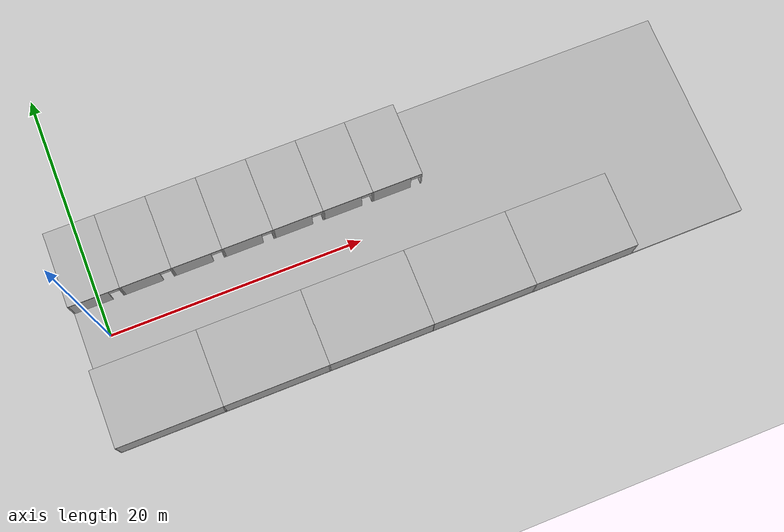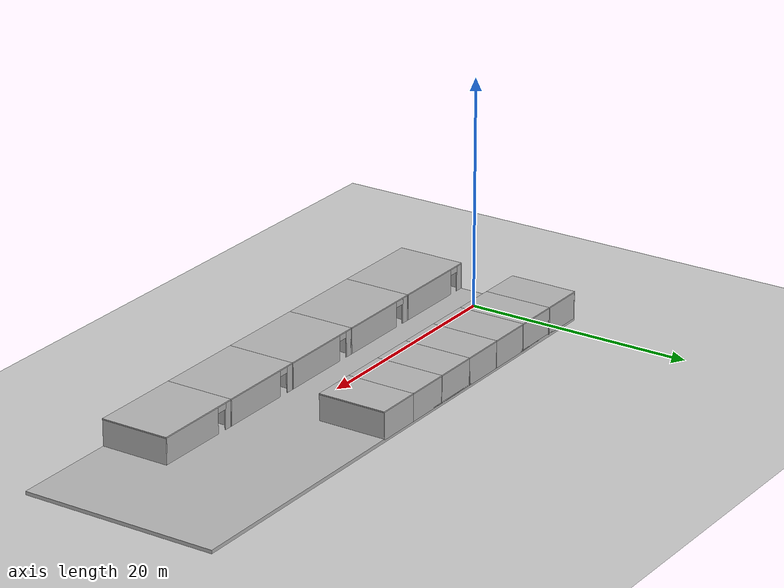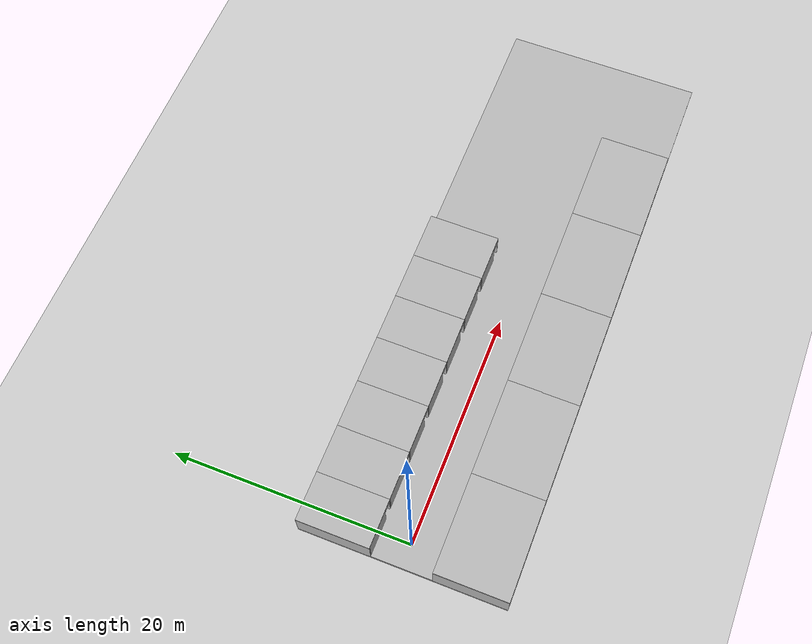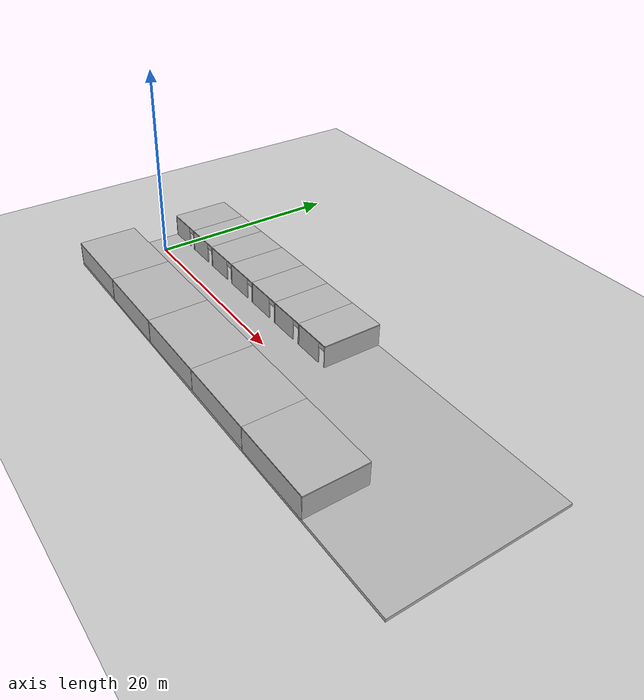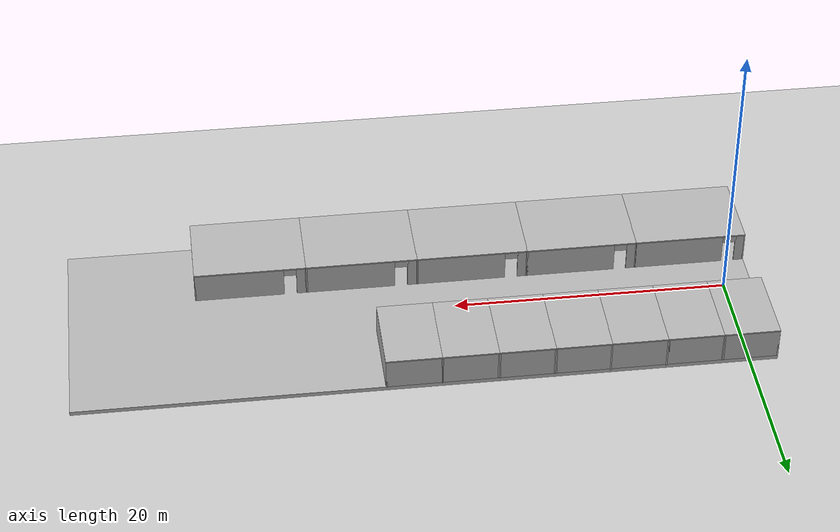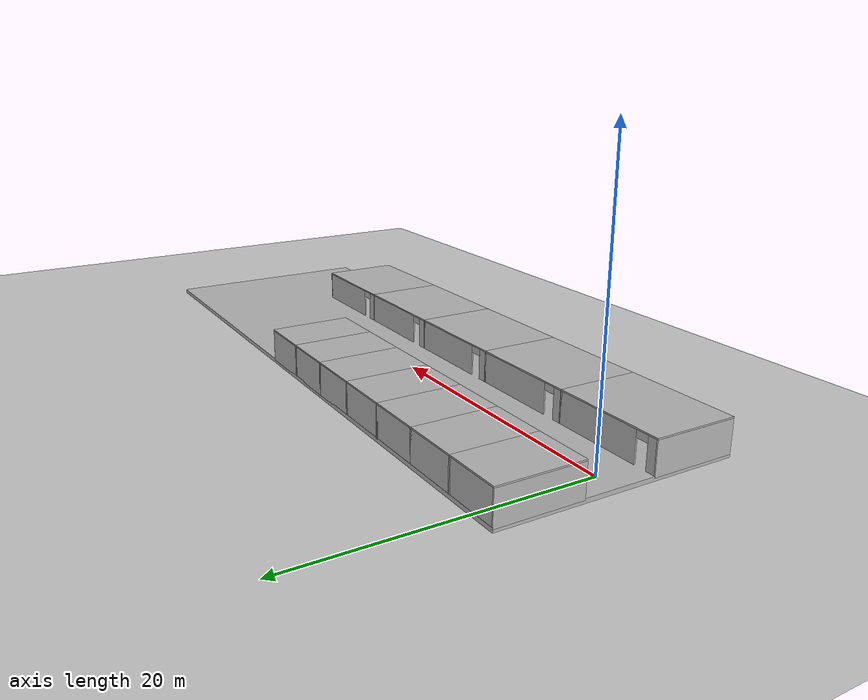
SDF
<?xml version="1.0" ?>
<sdf version="1.5">
  <world name="default">

    <include>
      <uri>model://sun</uri>
    </include>

    <include>
      <uri>model://ground_plane</uri>
    </include>

    turtlebot
(
  pose [ 2.0 2.0 0.0 0.0 ]
  name "turtlebot"
  color "black"
)

    <!--room901==========================================================-->
    <model name="room901">
      <pose>0 5.5 0.15 0 0 0</pose>
      <static> true </static>
      <link name="room901_wall">

        <!--room_floor-->

        <!--room_left_wall-->
        <collision name="left_wall_collision">
          <pose>-1.956 0 1.2 0 0 0</pose>
          <geometry>
            <box>
              <size>0.1 6.0 2.3</size>
            </box>
          </geometry>
        </collision>
        <visual name="left_wall_visual">
          <pose>-1.956 0 1.2 0 0 0</pose>
          <geometry>
            <box>
              <size>0.1 6.0 2.3</size>
            </box>
          </geometry>
        </visual>

        <!--room_right_wall-->
        <collision name="right_wall_collision">
          <pose>1.956 0 1.2 0 0 0</pose>
          <geometry>
            <box>
              <size>0.1 6.0 2.3</size>
            </box>
          </geometry>
        </collision>
        <visual name="right_wall_visual">
          <pose>1.956 0 1.2 0 0 0</pose>
          <geometry>
            <box>
              <size>0.1 6.0 2.3</size>
            </box>
          </geometry>
        </visual>

        <!--rear_wall-->
        <collision name="rear_wall_collision">
          <pose>0 2.95 1.2 0 0 0</pose>
          <geometry>
            <box>
              <size>4.0 0.1 2.3</size>
            </box>
          </geometry>
        </collision>
        <visual name="rear_wall_visual">
          <pose>0 2.95 1.2 0 0 0</pose>
          <geometry>
            <box>
              <size>4.0 0.1 2.3</size>
            </box>
          </geometry>
        </visual>

      <!--front_wall-->
        <collision name="front_left_wall_collision">
          <pose>-0.41 -2.95 1.2 0 0 0</pose>
          <geometry>
            <box>
              <size>3.0 0.1 2.3</size>
            </box>
          </geometry>
        </collision>
        <visual name="front_left_wall_visual">
          <pose>-0.41 -2.95 1.2 0 0 0</pose>
          <geometry>
            <box>
              <size>3.0 0.1 2.3</size>
            </box>
          </geometry>
        </visual>

        <collision name="front_right_wall_collision">
          <pose>0.85 -0.95 1.2 0 0 0</pose>
          <geometry>
            <box>
              <size>0.4 0.1 2.3</size>
            </box>
          </geometry>
        </collision>
        <visual name="front_right_wall_visual">
          <pose>0.85 -0.95 1.2 0 0 0</pose>
          <geometry>
            <box>
              <size>0.4 0.1 2.3</size>
            </box>
          </geometry>
        </visual>

        <collision name="front_top_wall_collision">
          <pose>1.5 -2.95 2.1 0 0 0</pose>
          <geometry>
            <box>
              <size>0.82 0.1 0.5</size>
            </box>
          </geometry>
        </collision>
        <visual name="front_top_wall_visual">
          <pose>1.5 -2.95 2.1 0 0 0</pose>
          <geometry>
            <box>
              <size>0.82 0.1 0.5</size>
            </box>
          </geometry>
        </visual>

      <!--room_ceiling-->
        <collision name="ceiling_collision">
          <pose>0 0 2.4 0 0 0</pose>
          <geometry>
            <box>
              <size>4.02 6.0 0.1</size>
            </box>
          </geometry>
        </collision>
        <visual name="ceiling_visual">
          <pose>0 0 2.4 0 0 0</pose>
          <geometry>
            <box>
              <size>4.02 6.0 0.1</size>
            </box>
          </geometry>
        </visual>
      </link>
    </model>

    <!--room902=======================================================-->
    <model name="room902">
      <pose>4 5.5 0.15 0 0 0</pose>
      <static> true </static>
      <link name="room902_wall">

        <!--room_floor-->

        <!--room_left_wall-->
        <collision name="left_wall_collision">
          <pose>-1.956 0 1.2 0 0 0</pose>
          <geometry>
            <box>
              <size>0.1 6.0 2.3</size>
            </box>
          </geometry>
        </collision>
        <visual name="left_wall_visual">
          <pose>-1.956 0 1.2 0 0 0</pose>
          <geometry>
            <box>
              <size>0.1 6.0 2.3</size>
            </box>
          </geometry>
        </visual>

        <!--room_right_wall-->
        <collision name="right_wall_collision">
          <pose>1.956 0 1.2 0 0 0</pose>
          <geometry>
            <box>
              <size>0.1 6.0 2.3</size>
            </box>
          </geometry>
        </collision>
        <visual name="right_wall_visual">
          <pose>1.956 0 1.2 0 0 0</pose>
          <geometry>
            <box>
              <size>0.1 6.0 2.3</size>
            </box>
          </geometry>
        </visual>

        <!--rear_wall-->
        <collision name="rear_wall_collision">
          <pose>0 2.95 1.2 0 0 0</pose>
          <geometry>
            <box>
              <size>4.0 0.1 2.3</size>
            </box>
          </geometry>
        </collision>
        <visual name="rear_wall_visual">
          <pose>0 2.95 1.2 0 0 0</pose>
          <geometry>
            <box>
              <size>4.0 0.1 2.3</size>
            </box>
          </geometry>
        </visual>

      <!--front_wall-->
        <collision name="front_left_wall_collision">
          <pose>-0.41 -2.95 1.2 0 0 0</pose>
          <geometry>
            <box>
              <size>3.0 0.1 2.3</size>
            </box>
          </geometry>
        </collision>
        <visual name="front_left_wall_visual">
          <pose>-0.41 -2.95 1.2 0 0 0</pose>
          <geometry>
            <box>
              <size>3.0 0.1 2.3</size>
            </box>
          </geometry>
        </visual>

        <collision name="front_top_wall_collision">
          <pose>1.5 -2.95 2.1 0 0 0</pose>
          <geometry>
            <box>
              <size>0.82 0.1 0.5</size>
            </box>
          </geometry>
        </collision>
        <visual name="front_top_wall_visual">
          <pose>1.5 -2.95 2.1 0 0 0</pose>
          <geometry>
            <box>
              <size>0.82 0.1 0.5</size>
            </box>
          </geometry>
        </visual>

      <!--room_ceiling-->
        <collision name="ceiling_collision">
          <pose>0 0 2.4 0 0 0</pose>
          <geometry>
            <box>
              <size>4.02 6.0 0.1</size>
            </box>
          </geometry>
        </collision>
        <visual name="ceiling_visual">
          <pose>0 0 2.4 0 0 0</pose>
          <geometry>
            <box>
              <size>4.02 6.0 0.1</size>
            </box>
          </geometry>
        </visual>
      </link>
    </model>

    <!--room903==========================================================-->
    <model name="room903">
      <pose>8 5.5 0.15 0 0 0</pose>
      <static> true </static>
      <link name="room903_wall">

        <!--room_floor-->

        <!--room_left_wall-->
        <collision name="left_wall_collision">
          <pose>-1.956 0 1.2 0 0 0</pose>
          <geometry>
            <box>
              <size>0.1 6.0 2.3</size>
            </box>
          </geometry>
        </collision>
        <visual name="left_wall_visual">
          <pose>-1.956 0 1.2 0 0 0</pose>
          <geometry>
            <box>
              <size>0.1 6.0 2.3</size>
            </box>
          </geometry>
        </visual>

        <!--room_right_wall-->
        <collision name="right_wall_collision">
          <pose>1.956 0 1.2 0 0 0</pose>
          <geometry>
            <box>
              <size>0.1 6.0 2.3</size>
            </box>
          </geometry>
        </collision>
        <visual name="right_wall_visual">
          <pose>1.956 0 1.2 0 0 0</pose>
          <geometry>
            <box>
              <size>0.1 6.0 2.3</size>
            </box>
          </geometry>
        </visual>

        <!--rear_wall-->
        <collision name="rear_wall_collision">
          <pose>0 2.95 1.2 0 0 0</pose>
          <geometry>
            <box>
              <size>4.0 0.1 2.3</size>
            </box>
          </geometry>
        </collision>
        <visual name="rear_wall_visual">
          <pose>0 2.95 1.2 0 0 0</pose>
          <geometry>
            <box>
              <size>4.0 0.1 2.3</size>
            </box>
          </geometry>
        </visual>

      <!--front_wall-->
        <collision name="front_left_wall_collision">
          <pose>-0.41 -2.95 1.2 0 0 0</pose>
          <geometry>
            <box>
              <size>3.0 0.1 2.3</size>
            </box>
          </geometry>
        </collision>
        <visual name="front_left_wall_visual">
          <pose>-0.41 -2.95 1.2 0 0 0</pose>
          <geometry>
            <box>
              <size>3.0 0.1 2.3</size>
            </box>
          </geometry>
        </visual>

        <collision name="front_right_wall_collision">
          <pose>0.85 -0.95 1.2 0 0 0</pose>
          <geometry>
            <box>
              <size>0.4 0.1 2.3</size>
            </box>
          </geometry>
        </collision>
        <visual name="front_right_wall_visual">
          <pose>0.85 -0.95 1.2 0 0 0</pose>
          <geometry>
            <box>
              <size>0.4 0.1 2.3</size>
            </box>
          </geometry>
        </visual>

        <collision name="front_top_wall_collision">
          <pose>1.5 -2.95 2.1 0 0 0</pose>
          <geometry>
            <box>
              <size>0.82 0.1 0.5</size>
            </box>
          </geometry>
        </collision>
        <visual name="front_top_wall_visual">
          <pose>1.5 -2.95 2.1 0 0 0</pose>
          <geometry>
            <box>
              <size>0.82 0.1 0.5</size>
            </box>
          </geometry>
        </visual>

      <!--room_ceiling-->
        <collision name="ceiling_collision">
          <pose>0 0 2.4 0 0 0</pose>
          <geometry>
            <box>
              <size>4.02 6.0 0.1</size>
            </box>
          </geometry>
        </collision>
        <visual name="ceiling_visual">
          <pose>0 0 2.4 0 0 0</pose>
          <geometry>
            <box>
              <size>4.02 6.0 0.1</size>
            </box>
          </geometry>
        </visual>
      </link>
    </model>

    <!--room904==========================================================-->
    <model name="room904">
      <pose>12 5.5 0.15 0 0 0</pose>
      <static> true </static>
      <link name="room904_wall">

        <!--room_floor-->

        <!--room_left_wall-->
        <collision name="left_wall_collision">
          <pose>-1.956 0 1.2 0 0 0</pose>
          <geometry>
            <box>
              <size>0.1 6.0 2.3</size>
            </box>
          </geometry>
        </collision>
        <visual name="left_wall_visual">
          <pose>-1.956 0 1.2 0 0 0</pose>
          <geometry>
            <box>
              <size>0.1 6.0 2.3</size>
            </box>
          </geometry>
        </visual>

        <!--room_right_wall-->
        <collision name="right_wall_collision">
          <pose>1.956 0 1.2 0 0 0</pose>
          <geometry>
            <box>
              <size>0.1 6.0 2.3</size>
            </box>
          </geometry>
        </collision>
        <visual name="right_wall_visual">
          <pose>1.956 0 1.2 0 0 0</pose>
          <geometry>
            <box>
              <size>0.1 6.0 2.3</size>
            </box>
          </geometry>
        </visual>

        <!--rear_wall-->
        <collision name="rear_wall_collision">
          <pose>0 2.95 1.2 0 0 0</pose>
          <geometry>
            <box>
              <size>4.0 0.1 2.3</size>
            </box>
          </geometry>
        </collision>
        <visual name="rear_wall_visual">
          <pose>0 2.95 1.2 0 0 0</pose>
          <geometry>
            <box>
              <size>4.0 0.1 2.3</size>
            </box>
          </geometry>
        </visual>

      <!--front_wall-->
        <collision name="front_left_wall_collision">
          <pose>-0.41 -2.95 1.2 0 0 0</pose>
          <geometry>
            <box>
              <size>3.0 0.1 2.3</size>
            </box>
          </geometry>
        </collision>
        <visual name="front_left_wall_visual">
          <pose>-0.41 -2.95 1.2 0 0 0</pose>
          <geometry>
            <box>
              <size>3.0 0.1 2.3</size>
            </box>
          </geometry>
        </visual>

        <collision name="front_right_wall_collision">
          <pose>0.85 -0.95 1.2 0 0 0</pose>
          <geometry>
            <box>
              <size>0.4 0.1 2.3</size>
            </box>
          </geometry>
        </collision>
        <visual name="front_right_wall_visual">
          <pose>0.85 -0.95 1.2 0 0 0</pose>
          <geometry>
            <box>
              <size>0.4 0.1 2.3</size>
            </box>
          </geometry>
        </visual>

        <collision name="front_top_wall_collision">
          <pose>1.5 -2.95 2.1 0 0 0</pose>
          <geometry>
            <box>
              <size>0.82 0.1 0.5</size>
            </box>
          </geometry>
        </collision>
        <visual name="front_top_wall_visual">
          <pose>1.5 -2.95 2.1 0 0 0</pose>
          <geometry>
            <box>
              <size>0.82 0.1 0.5</size>
            </box>
          </geometry>
        </visual>

      <!--room_ceiling-->
        <collision name="ceiling_collision">
          <pose>0 0 2.4 0 0 0</pose>
          <geometry>
            <box>
              <size>4.02 6.0 0.1</size>
            </box>
          </geometry>
        </collision>
        <visual name="ceiling_visual">
          <pose>0 0 2.4 0 0 0</pose>
          <geometry>
            <box>
              <size>4.02 6.0 0.1</size>
            </box>
          </geometry>
        </visual>
      </link>
    </model>

    <!--room905==========================================================-->
    <model name="room905">
      <pose>16 5.5 0.15 0 0 0</pose>
      <static> true </static>
      <link name="room905_wall">

        <!--room_floor-->

        <!--room_left_wall-->
        <collision name="left_wall_collision">
          <pose>-1.956 0 1.2 0 0 0</pose>
          <geometry>
            <box>
              <size>0.1 6.0 2.3</size>
            </box>
          </geometry>
        </collision>
        <visual name="left_wall_visual">
          <pose>-1.956 0 1.2 0 0 0</pose>
          <geometry>
            <box>
              <size>0.1 6.0 2.3</size>
            </box>
          </geometry>
        </visual>

        <!--room_right_wall-->
        <collision name="right_wall_collision">
          <pose>1.956 0 1.2 0 0 0</pose>
          <geometry>
            <box>
              <size>0.1 6.0 2.3</size>
            </box>
          </geometry>
        </collision>
        <visual name="right_wall_visual">
          <pose>1.956 0 1.2 0 0 0</pose>
          <geometry>
            <box>
              <size>0.1 6.0 2.3</size>
            </box>
          </geometry>
        </visual>

        <!--rear_wall-->
        <collision name="rear_wall_collision">
          <pose>0 2.95 1.2 0 0 0</pose>
          <geometry>
            <box>
              <size>4.0 0.1 2.3</size>
            </box>
          </geometry>
        </collision>
        <visual name="rear_wall_visual">
          <pose>0 2.95 1.2 0 0 0</pose>
          <geometry>
            <box>
              <size>4.0 0.1 2.3</size>
            </box>
          </geometry>
        </visual>

      <!--front_wall-->
        <collision name="front_left_wall_collision">
          <pose>-0.41 -2.95 1.2 0 0 0</pose>
          <geometry>
            <box>
              <size>3.0 0.1 2.3</size>
            </box>
          </geometry>
        </collision>
        <visual name="front_left_wall_visual">
          <pose>-0.41 -2.95 1.2 0 0 0</pose>
          <geometry>
            <box>
              <size>3.0 0.1 2.3</size>
            </box>
          </geometry>
        </visual>

        <collision name="front_right_wall_collision">
          <pose>0.85 -0.95 1.2 0 0 0</pose>
          <geometry>
            <box>
              <size>0.4 0.1 2.3</size>
            </box>
          </geometry>
        </collision>
        <visual name="front_right_wall_visual">
          <pose>0.85 -0.95 1.2 0 0 0</pose>
          <geometry>
            <box>
              <size>0.4 0.1 2.3</size>
            </box>
          </geometry>
        </visual>

        <collision name="front_top_wall_collision">
          <pose>1.5 -2.95 2.1 0 0 0</pose>
          <geometry>
            <box>
              <size>0.82 0.1 0.5</size>
            </box>
          </geometry>
        </collision>
        <visual name="front_top_wall_visual">
          <pose>1.5 -2.95 2.1 0 0 0</pose>
          <geometry>
            <box>
              <size>0.82 0.1 0.5</size>
            </box>
          </geometry>
        </visual>

      <!--room_ceiling-->
        <collision name="ceiling_collision">
          <pose>0 0 2.4 0 0 0</pose>
          <geometry>
            <box>
              <size>4.02 6.0 0.1</size>
            </box>
          </geometry>
        </collision>
        <visual name="ceiling_visual">
          <pose>0 0 2.4 0 0 0</pose>
          <geometry>
            <box>
              <size>4.02 6.0 0.1</size>
            </box>
          </geometry>
        </visual>
      </link>
    </model>

    <!--room906==========================================================-->
    <model name="room906">
      <pose>20 5.5 0.15 0 0 0</pose>
      <static> true </static>
      <link name="room906_wall">

        <!--room_floor-->

        <!--room_left_wall-->
        <collision name="left_wall_collision">
          <pose>-1.956 0 1.2 0 0 0</pose>
          <geometry>
            <box>
              <size>0.1 6.0 2.3</size>
            </box>
          </geometry>
        </collision>
        <visual name="left_wall_visual">
          <pose>-1.956 0 1.2 0 0 0</pose>
          <geometry>
            <box>
              <size>0.1 6.0 2.3</size>
            </box>
          </geometry>
        </visual>

        <!--room_right_wall-->
        <collision name="right_wall_collision">
          <pose>1.956 0 1.2 0 0 0</pose>
          <geometry>
            <box>
              <size>0.1 6.0 2.3</size>
            </box>
          </geometry>
        </collision>
        <visual name="right_wall_visual">
          <pose>1.956 0 1.2 0 0 0</pose>
          <geometry>
            <box>
              <size>0.1 6.0 2.3</size>
            </box>
          </geometry>
        </visual>

        <!--rear_wall-->
        <collision name="rear_wall_collision">
          <pose>0 2.95 1.2 0 0 0</pose>
          <geometry>
            <box>
              <size>4.0 0.1 2.3</size>
            </box>
          </geometry>
        </collision>
        <visual name="rear_wall_visual">
          <pose>0 2.95 1.2 0 0 0</pose>
          <geometry>
            <box>
              <size>4.0 0.1 2.3</size>
            </box>
          </geometry>
        </visual>

      <!--front_wall-->
        <collision name="front_left_wall_collision">
          <pose>-0.41 -2.95 1.2 0 0 0</pose>
          <geometry>
            <box>
              <size>3.0 0.1 2.3</size>
            </box>
          </geometry>
        </collision>
        <visual name="front_left_wall_visual">
          <pose>-0.41 -2.95 1.2 0 0 0</pose>
          <geometry>
            <box>
              <size>3.0 0.1 2.3</size>
            </box>
          </geometry>
        </visual>

        <collision name="front_right_wall_collision">
          <pose>0.85 -0.95 1.2 0 0 0</pose>
          <geometry>
            <box>
              <size>0.4 0.1 2.3</size>
            </box>
          </geometry>
        </collision>
        <visual name="front_right_wall_visual">
          <pose>0.85 -0.95 1.2 0 0 0</pose>
          <geometry>
            <box>
              <size>0.4 0.1 2.3</size>
            </box>
          </geometry>
        </visual>

        <collision name="front_top_wall_collision">
          <pose>1.5 -2.95 2.1 0 0 0</pose>
          <geometry>
            <box>
              <size>0.82 0.1 0.5</size>
            </box>
          </geometry>
        </collision>
        <visual name="front_top_wall_visual">
          <pose>1.5 -2.95 2.1 0 0 0</pose>
          <geometry>
            <box>
              <size>0.82 0.1 0.5</size>
            </box>
          </geometry>
        </visual>

      <!--room_ceiling-->
        <collision name="ceiling_collision">
          <pose>0 0 2.4 0 0 0</pose>
          <geometry>
            <box>
              <size>4.02 6.0 0.1</size>
            </box>
          </geometry>
        </collision>
        <visual name="ceiling_visual">
          <pose>0 0 2.4 0 0 0</pose>
          <geometry>
            <box>
              <size>4.02 6.0 0.1</size>
            </box>
          </geometry>
        </visual>
      </link>
    </model>

    <!--room907==========================================================-->
    <model name="room907">
      <pose>24 5.5 0.15 0 0 0</pose>
      <static> true </static>
      <link name="room907_wall">

        <!--room_floor-->

        <!--room_left_wall-->
        <collision name="left_wall_collision">
          <pose>-1.956 0 1.2 0 0 0</pose>
          <geometry>
            <box>
              <size>0.1 6.0 2.3</size>
            </box>
          </geometry>
        </collision>
        <visual name="left_wall_visual">
          <pose>-1.956 0 1.2 0 0 0</pose>
          <geometry>
            <box>
              <size>0.1 6.0 2.3</size>
            </box>
          </geometry>
        </visual>

        <!--room_right_wall-->
        <collision name="right_wall_collision">
          <pose>1.956 0 1.2 0 0 0</pose>
          <geometry>
            <box>
              <size>0.1 6.0 2.3</size>
            </box>
          </geometry>
        </collision>
        <visual name="right_wall_visual">
          <pose>1.956 0 1.2 0 0 0</pose>
          <geometry>
            <box>
              <size>0.1 6.0 2.3</size>
            </box>
          </geometry>
        </visual>

        <!--rear_wall-->
        <collision name="rear_wall_collision">
          <pose>0 2.95 1.2 0 0 0</pose>
          <geometry>
            <box>
              <size>4.0 0.1 2.3</size>
            </box>
          </geometry>
        </collision>
        <visual name="rear_wall_visual">
          <pose>0 2.95 1.2 0 0 0</pose>
          <geometry>
            <box>
              <size>4.0 0.1 2.3</size>
            </box>
          </geometry>
        </visual>

      <!--front_wall-->
        <collision name="front_left_wall_collision">
          <pose>-0.41 -2.95 1.2 0 0 0</pose>
          <geometry>
            <box>
              <size>3.0 0.1 2.3</size>
            </box>
          </geometry>
        </collision>
        <visual name="front_left_wall_visual">
          <pose>-0.41 -2.95 1.2 0 0 0</pose>
          <geometry>
            <box>
              <size>3.0 0.1 2.3</size>
            </box>
          </geometry>
        </visual>

        <collision name="front_right_wall_collision">
          <pose>0.85 -0.95 1.2 0 0 0</pose>
          <geometry>
            <box>
              <size>0.4 0.1 2.3</size>
            </box>
          </geometry>
        </collision>
        <visual name="front_right_wall_visual">
          <pose>0.85 -0.95 1.2 0 0 0</pose>
          <geometry>
            <box>
              <size>0.4 0.1 2.3</size>
            </box>
          </geometry>
        </visual>

        <collision name="front_top_wall_collision">
          <pose>1.5 -2.95 2.1 0 0 0</pose>
          <geometry>
            <box>
              <size>0.82 0.1 0.5</size>
            </box>
          </geometry>
        </collision>
        <visual name="front_top_wall_visual">
          <pose>1.5 -2.95 2.1 0 0 0</pose>
          <geometry>
            <box>
              <size>0.82 0.1 0.5</size>
            </box>
          </geometry>
        </visual>

      <!--room_ceiling-->
        <collision name="ceiling_collision">
          <pose>0 0 2.4 0 0 0</pose>
          <geometry>
            <box>
              <size>4.02 6.0 0.1</size>
            </box>
          </geometry>
        </collision>
        <visual name="ceiling_visual">
          <pose>0 0 2.4 0 0 0</pose>
          <geometry>
            <box>
              <size>4.02 6.0 0.1</size>
            </box>
          </geometry>
        </visual>
      </link>
    </model>

    <!--floor====================================================================-->

    <model name="floor">
      <pose>23 0 0.15 0 0 0</pose>
      <static>true</static>
      <link name="Hallfloor">
        <collision name="floor_collision">
          <pose>0 0 0 0 0 0</pose>
          <geometry>
            <box>
              <size>50 17.0 0.2</size>
            </box>
          </geometry>
        </collision>
        <visual name="floor_visual">
          <pose>0 0 0 0 0 0</pose>
          <geometry>
            <box>
              <size>50 17.0 0.3</size>
            </box>
          </geometry>
        </visual>

      </link>
    </model>

    <!--room920====================================================================-->
    <model name="room920">
      <pose>0 -5.5 0.15 0 0 3.141592653589793</pose>
      <static> true </static>
      <link name="room920_wall">

        <!--room_floor-->

        <!--room_left_wall-->
        <collision name="left_wall_collision">
          <pose>-6.13 0 1.2 0 0 0</pose>
          <geometry>
            <box>
              <size>0.1 6.0 2.3</size>
            </box>
          </geometry>
        </collision>
        <visual name="left_wall_visual">
          <pose>-6.13 0 1.2 0 0 0</pose>
          <geometry>
            <box>
              <size>0.1 6.0 2.3</size>
            </box>
          </geometry>
        </visual>

        <!--room_right_wall-->
        <collision name="right_wall_collision">
          <pose>1.956 0 1.2 0 0 0</pose>
          <geometry>
            <box>
              <size>0.1 6.0 2.3</size>
            </box>
          </geometry>
        </collision>
        <visual name="right_wall_visual">
          <pose>1.956 0 1.2 0 0 0</pose>
          <geometry>
            <box>
              <size>0.1 6.0 2.3</size>
            </box>
          </geometry>
        </visual>

        <!--rear_wall-->
        <collision name="rear_wall_collision">
          <pose>-2.09 2.95 1.2 0 0 0</pose>
          <geometry>
            <box>
              <size>8.1 0.1 2.3</size>
            </box>
          </geometry>
        </collision>
        <visual name="rear_wall_visual">
          <pose>-2.09 2.95 1.2 0 0 0</pose>
          <geometry>
            <box>
              <size>8.1 0.1 2.3</size>
            </box>
          </geometry>
        </visual>

      <!--front_wall-->
        <collision name="front_left_wall_collision">
          <pose>-2.9 -2.95 1.2 0 0 0</pose>
          <geometry>
            <box>
              <size>6.5 0.1 2.3</size>
            </box>
          </geometry>
        </collision>
        <visual name="front_left_wall_visual">
          <pose>-2.9 -2.95 1.2 0 0 0</pose>
          <geometry>
            <box>
              <size>6.5 0.1 2.3</size>
            </box>
          </geometry>
        </visual>

        <collision name="front_right_wall_collision">
          <pose>1.6 -2.95 1.2 0 0 0</pose>
          <geometry>
            <box>
              <size>0.66 0.1 2.3</size>
            </box>
          </geometry>
        </collision>
        <visual name="front_right_wall_visual">
          <pose>1.6 -2.95 1.2 0 0 0</pose>
          <geometry>
            <box>
              <size>0.66 0.1 2.3</size>
            </box>
          </geometry>
        </visual>

        <collision name="front_top_wall_collision">
          <pose>1.5 -2.95 2.1 0 0 0</pose>
          <geometry>
            <box>
              <size>0.82 0.1 0.5</size>
            </box>
          </geometry>
        </collision>
        <visual name="front_top_wall_visual">
          <pose>0.85 -2.95 2.1 0 0 0</pose>
          <geometry>
            <box>
              <size>1 0.1 0.5</size>
            </box>
          </geometry>
        </visual>

      <!--room_ceiling-->
        <collision name="ceiling_collision">
          <pose>-2.09 0 2.4 0 0 0</pose>
          <geometry>
            <box>
              <size>8.18 6.0 0.1</size>
            </box>
          </geometry>
        </collision>
        <visual name="ceiling_visual">
          <pose>-2.09 0 2.4 0 0 0</pose>
          <geometry>
            <box>
              <size>8.18 6.0 0.1</size>
            </box>
          </geometry>
        </visual>
      </link>
    </model>

    <!--room919==================================================-->
    <model name="room919">
      <pose>8.15 -5.5 0.15 0 0 3.141592653589793</pose>
      <static> true </static>
      <link name="room919_wall">

        <!--room_floor-->

        <!--room_left_wall-->
        <collision name="left_wall_collision">
          <pose>-6.13 0 1.2 0 0 0</pose>
          <geometry>
            <box>
              <size>0.1 6.0 2.3</size>
            </box>
          </geometry>
        </collision>
        <visual name="left_wall_visual">
          <pose>-6.13 0 1.2 0 0 0</pose>
          <geometry>
            <box>
              <size>0.1 6.0 2.3</size>
            </box>
          </geometry>
        </visual>

        <!--room_right_wall-->
        <collision name="right_wall_collision">
          <pose>1.956 0 1.2 0 0 0</pose>
          <geometry>
            <box>
              <size>0.1 6.0 2.3</size>
            </box>
          </geometry>
        </collision>
        <visual name="right_wall_visual">
          <pose>1.956 0 1.2 0 0 0</pose>
          <geometry>
            <box>
              <size>0.1 6.0 2.3</size>
            </box>
          </geometry>
        </visual>

        <!--rear_wall-->
        <collision name="rear_wall_collision">
          <pose>-2.09 2.95 1.2 0 0 0</pose>
          <geometry>
            <box>
              <size>8.1 0.1 2.3</size>
            </box>
          </geometry>
        </collision>
        <visual name="rear_wall_visual">
          <pose>-2.09 2.95 1.2 0 0 0</pose>
          <geometry>
            <box>
              <size>8.1 0.1 2.3</size>
            </box>
          </geometry>
        </visual>

      <!--front_wall-->
        <collision name="front_left_wall_collision">
          <pose>-2.9 -2.95 1.2 0 0 0</pose>
          <geometry>
            <box>
              <size>6.5 0.1 2.3</size>
            </box>
          </geometry>
        </collision>
        <visual name="front_left_wall_visual">
          <pose>-2.9 -2.95 1.2 0 0 0</pose>
          <geometry>
            <box>
              <size>6.5 0.1 2.3</size>
            </box>
          </geometry>
        </visual>

        <collision name="front_right_wall_collision">
          <pose>1.6 -2.95 1.2 0 0 0</pose>
          <geometry>
            <box>
              <size>0.66 0.1 2.3</size>
            </box>
          </geometry>
        </collision>
        <visual name="front_right_wall_visual">
          <pose>1.6 -2.95 1.2 0 0 0</pose>
          <geometry>
            <box>
              <size>0.66 0.1 2.3</size>
            </box>
          </geometry>
        </visual>

        <collision name="front_top_wall_collision">
          <pose>1.5 -2.95 2.1 0 0 0</pose>
          <geometry>
            <box>
              <size>0.82 0.1 0.5</size>
            </box>
          </geometry>
        </collision>
        <visual name="front_top_wall_visual">
          <pose>0.85 -2.95 2.1 0 0 0</pose>
          <geometry>
            <box>
              <size>1 0.1 0.5</size>
            </box>
          </geometry>
        </visual>

      <!--room_ceiling-->
        <collision name="ceiling_collision">
          <pose>-2.09 0 2.4 0 0 0</pose>
          <geometry>
            <box>
              <size>8.18 6.0 0.1</size>
            </box>
          </geometry>
        </collision>
        <visual name="ceiling_visual">
          <pose>-2.09 0 2.4 0 0 0</pose>
          <geometry>
            <box>
              <size>8.18 6.0 0.1</size>
            </box>
          </geometry>
        </visual>
      </link>
    </model>

    <!--room918==================================================-->
    <model name="room918">
      <pose>16.3 -5.5 0.15 0 0 3.141592653589793</pose>
      <static> true </static>
      <link name="room918_wall">

        <!--room_floor-->

        <!--room_left_wall-->
        <collision name="left_wall_collision">
          <pose>-6.13 0 1.2 0 0 0</pose>
          <geometry>
            <box>
              <size>0.1 6.0 2.3</size>
            </box>
          </geometry>
        </collision>
        <visual name="left_wall_visual">
          <pose>-6.13 0 1.2 0 0 0</pose>
          <geometry>
            <box>
              <size>0.1 6.0 2.3</size>
            </box>
          </geometry>
        </visual>

        <!--room_right_wall-->
        <collision name="right_wall_collision">
          <pose>1.956 0 1.2 0 0 0</pose>
          <geometry>
            <box>
              <size>0.1 6.0 2.3</size>
            </box>
          </geometry>
        </collision>
        <visual name="right_wall_visual">
          <pose>1.956 0 1.2 0 0 0</pose>
          <geometry>
            <box>
              <size>0.1 6.0 2.3</size>
            </box>
          </geometry>
        </visual>

        <!--rear_wall-->
        <collision name="rear_wall_collision">
          <pose>-2.09 2.95 1.2 0 0 0</pose>
          <geometry>
            <box>
              <size>8.1 0.1 2.3</size>
            </box>
          </geometry>
        </collision>
        <visual name="rear_wall_visual">
          <pose>-2.09 2.95 1.2 0 0 0</pose>
          <geometry>
            <box>
              <size>8.1 0.1 2.3</size>
            </box>
          </geometry>
        </visual>

      <!--front_wall-->
        <collision name="front_left_wall_collision">
          <pose>-2.9 -2.95 1.2 0 0 0</pose>
          <geometry>
            <box>
              <size>6.5 0.1 2.3</size>
            </box>
          </geometry>
        </collision>
        <visual name="front_left_wall_visual">
          <pose>-2.9 -2.95 1.2 0 0 0</pose>
          <geometry>
            <box>
              <size>6.5 0.1 2.3</size>
            </box>
          </geometry>
        </visual>

        <collision name="front_right_wall_collision">
          <pose>1.6 -2.95 1.2 0 0 0</pose>
          <geometry>
            <box>
              <size>0.66 0.1 2.3</size>
            </box>
          </geometry>
        </collision>
        <visual name="front_right_wall_visual">
          <pose>1.6 -2.95 1.2 0 0 0</pose>
          <geometry>
            <box>
              <size>0.66 0.1 2.3</size>
            </box>
          </geometry>
        </visual>

        <collision name="front_top_wall_collision">
          <pose>1.5 -2.95 2.1 0 0 0</pose>
          <geometry>
            <box>
              <size>0.82 0.1 0.5</size>
            </box>
          </geometry>
        </collision>
        <visual name="front_top_wall_visual">
          <pose>0.85 -2.95 2.1 0 0 0</pose>
          <geometry>
            <box>
              <size>1 0.1 0.5</size>
            </box>
          </geometry>
        </visual>

      <!--room_ceiling-->
        <collision name="ceiling_collision">
          <pose>-2.09 0 2.4 0 0 0</pose>
          <geometry>
            <box>
              <size>8.18 6.0 0.1</size>
            </box>
          </geometry>
        </collision>
        <visual name="ceiling_visual">
          <pose>-2.09 0 2.4 0 0 0</pose>
          <geometry>
            <box>
              <size>8.18 6.0 0.1</size>
            </box>
          </geometry>
        </visual>
      </link>
    </model>

    <!--room917==========================================-->
    <model name="room917">
      <pose>24.45 -5.5 0.15 0 0 3.141592653589793</pose>
      <static> true </static>
      <link name="room917_wall">

        <!--room_floor-->

        <!--room_left_wall-->
        <collision name="left_wall_collision">
          <pose>-6.13 0 1.2 0 0 0</pose>
          <geometry>
            <box>
              <size>0.1 6.0 2.3</size>
            </box>
          </geometry>
        </collision>
        <visual name="left_wall_visual">
          <pose>-6.13 0 1.2 0 0 0</pose>
          <geometry>
            <box>
              <size>0.1 6.0 2.3</size>
            </box>
          </geometry>
        </visual>

        <!--room_right_wall-->
        <collision name="right_wall_collision">
          <pose>1.956 0 1.2 0 0 0</pose>
          <geometry>
            <box>
              <size>0.1 6.0 2.3</size>
            </box>
          </geometry>
        </collision>
        <visual name="right_wall_visual">
          <pose>1.956 0 1.2 0 0 0</pose>
          <geometry>
            <box>
              <size>0.1 6.0 2.3</size>
            </box>
          </geometry>
        </visual>

        <!--rear_wall-->
        <collision name="rear_wall_collision">
          <pose>-2.09 2.95 1.2 0 0 0</pose>
          <geometry>
            <box>
              <size>8.1 0.1 2.3</size>
            </box>
          </geometry>
        </collision>
        <visual name="rear_wall_visual">
          <pose>-2.09 2.95 1.2 0 0 0</pose>
          <geometry>
            <box>
              <size>8.1 0.1 2.3</size>
            </box>
          </geometry>
        </visual>

      <!--front_wall-->
        <collision name="front_left_wall_collision">
          <pose>-2.9 -2.95 1.2 0 0 0</pose>
          <geometry>
            <box>
              <size>6.5 0.1 2.3</size>
            </box>
          </geometry>
        </collision>
        <visual name="front_left_wall_visual">
          <pose>-2.9 -2.95 1.2 0 0 0</pose>
          <geometry>
            <box>
              <size>6.5 0.1 2.3</size>
            </box>
          </geometry>
        </visual>

        <collision name="front_right_wall_collision">
          <pose>1.6 -2.95 1.2 0 0 0</pose>
          <geometry>
            <box>
              <size>0.66 0.1 2.3</size>
            </box>
          </geometry>
        </collision>
        <visual name="front_right_wall_visual">
          <pose>1.6 -2.95 1.2 0 0 0</pose>
          <geometry>
            <box>
              <size>0.66 0.1 2.3</size>
            </box>
          </geometry>
        </visual>

        <collision name="front_top_wall_collision">
          <pose>1.5 -2.95 2.1 0 0 0</pose>
          <geometry>
            <box>
              <size>0.82 0.1 0.5</size>
            </box>
          </geometry>
        </collision>
        <visual name="front_top_wall_visual">
          <pose>0.85 -2.95 2.1 0 0 0</pose>
          <geometry>
            <box>
              <size>1 0.1 0.5</size>
            </box>
          </geometry>
        </visual>

      <!--room_ceiling-->
        <collision name="ceiling_collision">
          <pose>-2.09 0 2.4 0 0 0</pose>
          <geometry>
            <box>
              <size>8.18 6.0 0.1</size>
            </box>
          </geometry>
        </collision>
        <visual name="ceiling_visual">
          <pose>-2.09 0 2.4 0 0 0</pose>
          <geometry>
            <box>
              <size>8.18 6.0 0.1</size>
            </box>
          </geometry>
        </visual>
      </link>
    </model>

    <!--room916==========================================-->
    <model name="room917">
      <pose>32.6 -5.5 0.15 0 0 3.141592653589793</pose>
      <static> true </static>
      <link name="room917_wall">

        <!--room_floor-->

        <!--room_left_wall-->
        <collision name="left_wall_collision">
          <pose>-6.13 0 1.2 0 0 0</pose>
          <geometry>
            <box>
              <size>0.1 6.0 2.3</size>
            </box>
          </geometry>
        </collision>
        <visual name="left_wall_visual">
          <pose>-6.13 0 1.2 0 0 0</pose>
          <geometry>
            <box>
              <size>0.1 6.0 2.3</size>
            </box>
          </geometry>
        </visual>

        <!--room_right_wall-->
        <collision name="right_wall_collision">
          <pose>1.956 0 1.2 0 0 0</pose>
          <geometry>
            <box>
              <size>0.1 6.0 2.3</size>
            </box>
          </geometry>
        </collision>
        <visual name="right_wall_visual">
          <pose>1.956 0 1.2 0 0 0</pose>
          <geometry>
            <box>
              <size>0.1 6.0 2.3</size>
            </box>
          </geometry>
        </visual>

        <!--rear_wall-->
        <collision name="rear_wall_collision">
          <pose>-2.09 2.95 1.2 0 0 0</pose>
          <geometry>
            <box>
              <size>8.1 0.1 2.3</size>
            </box>
          </geometry>
        </collision>
        <visual name="rear_wall_visual">
          <pose>-2.09 2.95 1.2 0 0 0</pose>
          <geometry>
            <box>
              <size>8.1 0.1 2.3</size>
            </box>
          </geometry>
        </visual>

      <!--front_wall-->
        <collision name="front_left_wall_collision">
          <pose>-2.9 -2.95 1.2 0 0 0</pose>
          <geometry>
            <box>
              <size>6.5 0.1 2.3</size>
            </box>
          </geometry>
        </collision>
        <visual name="front_left_wall_visual">
          <pose>-2.9 -2.95 1.2 0 0 0</pose>
          <geometry>
            <box>
              <size>6.5 0.1 2.3</size>
            </box>
          </geometry>
        </visual>

        <collision name="front_right_wall_collision">
          <pose>1.6 -2.95 1.2 0 0 0</pose>
          <geometry>
            <box>
              <size>0.66 0.1 2.3</size>
            </box>
          </geometry>
        </collision>
        <visual name="front_right_wall_visual">
          <pose>1.6 -2.95 1.2 0 0 0</pose>
          <geometry>
            <box>
              <size>0.66 0.1 2.3</size>
            </box>
          </geometry>
        </visual>

        <collision name="front_top_wall_collision">
          <pose>1.5 -2.95 2.1 0 0 0</pose>
          <geometry>
            <box>
              <size>0.82 0.1 0.5</size>
            </box>
          </geometry>
        </collision>
        <visual name="front_top_wall_visual">
          <pose>0.85 -2.95 2.1 0 0 0</pose>
          <geometry>
            <box>
              <size>1 0.1 0.5</size>
            </box>
          </geometry>
        </visual>

      <!--room_ceiling-->
        <collision name="ceiling_collision">
          <pose>-2.09 0 2.4 0 0 0</pose>
          <geometry>
            <box>
              <size>8.18 6.0 0.1</size>
            </box>
          </geometry>
        </collision>
        <visual name="ceiling_visual">
          <pose>-2.09 0 2.4 0 0 0</pose>
          <geometry>
            <box>
              <size>8.18 6.0 0.1</size>
            </box>
          </geometry>
        </visual>
      </link>
    </model>

  </world>
</sdf>
